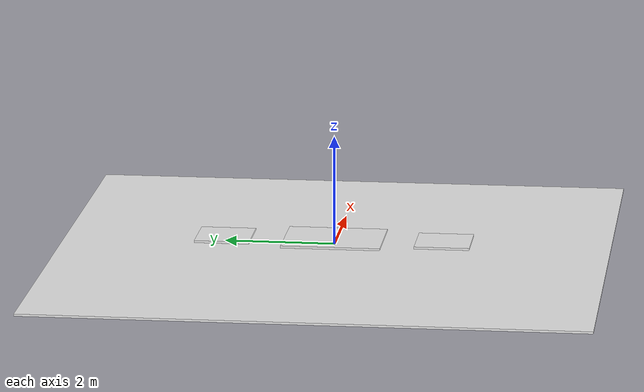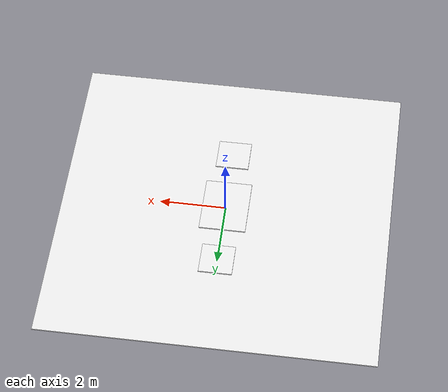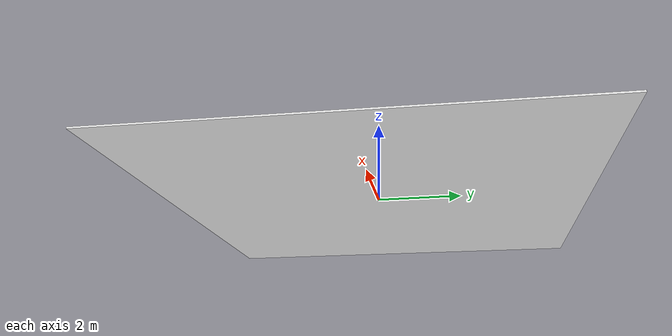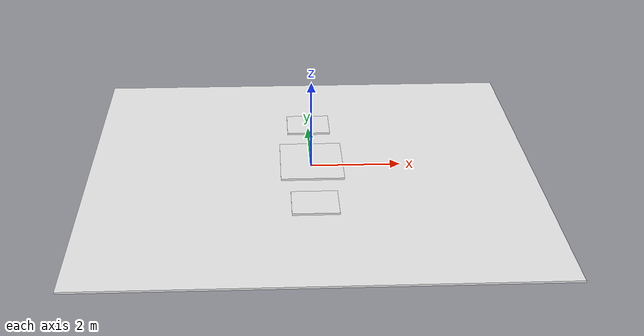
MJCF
<?xml version="1.0" ?>
<mujoco>
    <asset>

        <texture name="texplane" type="2d" builtin="checker" rgb1="1 1 1" rgb2="0 0 0" width="512" height="512"/>
        <texture name="texture_1" file="4x4_1000-0.png"/>
        <texture name="texture_2" file="4x4_1000-997.png"/>
        <material name="plane" texture="texplane" texrepeat="5 5" texuniform="true"/>
        <material name="text_1" texture="texture_1" />
        <material name="text_2" texture="texture_2" />
    </asset>
    <worldbody>
        <light dir="0 0 -1" pos="0 0 10" diffuse="0.3 0.6 0.3"/>
        <body name="checker" pos="0 0 0.1">
            <geom material="plane" size="0.7 0.9 0.02" rgba="1 1 1 1" type="box"/>
        </body>
        <body name="floor" pos="0 0 -0.1">
            <geom size="5.0 5.0 0.02" rgba="1 1 1 1" type="box"/>
        </body>
        <body name="checker_2" pos="0 2 0.1">
            <geom material="text_1" size="0.5 0.5 0.02" rgba="1 1 1 1" type="box"/>
        </body>
        <body name="checker_3" pos="0 -2 0.1">
            <geom material="text_2" size="0.5 0.5 0.02" rgba="1 1 1 1" type="box"/>
        </body>
    </worldbody>
</mujoco>
